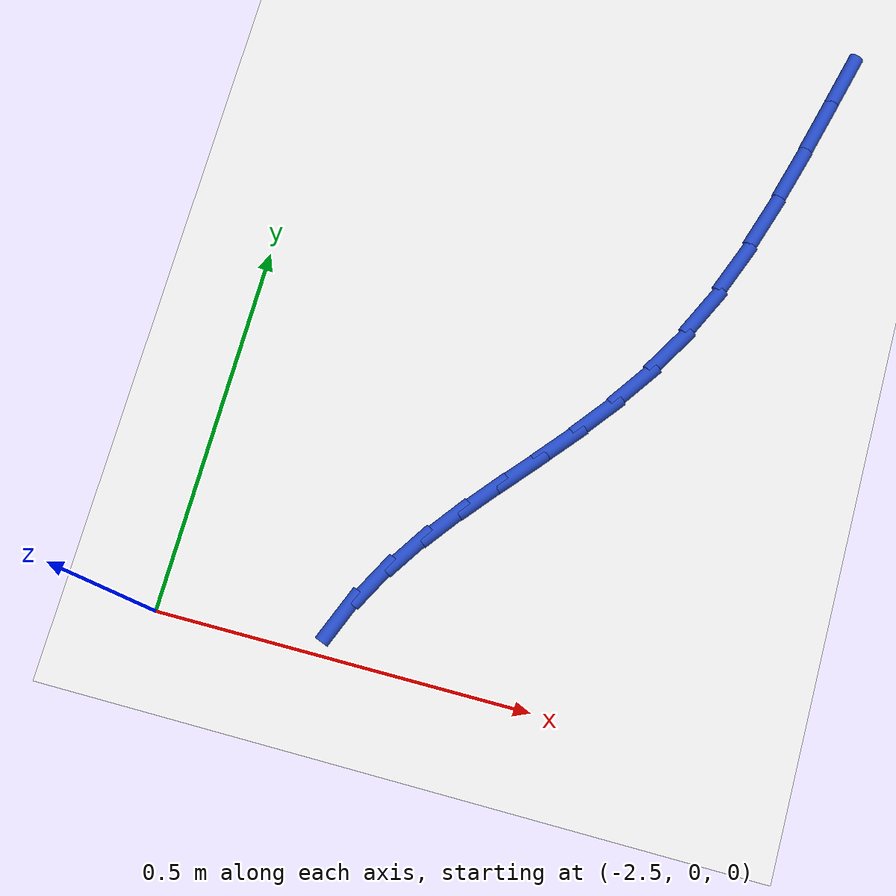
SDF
<sdf version="1.6">
 <world name="default">
  <model name="ground_plane">
   <static>1</static>
   <link name="link">
    <collision name="collision">
     <geometry><plane><normal>0 0 1</normal><size>100 100</size></plane></geometry>
     <surface><friction><ode><mu>100</mu><mu2>50</mu2></ode></friction></surface>
    </collision>
    <visual name="visual">
     <cast_shadows>0</cast_shadows>
     <geometry><plane><normal>0 0 1</normal><size>100 100</size></plane></geometry>
     <material>
      <script><uri>file://media/materials/scripts/gazebo.material</uri><name>Gazebo/WhiteGlow</name></script>
     </material>
    </visual>
   </link>
  </model>
  <model name="line">
   <link name="link_45">
    <pose>-1.802566544623577 0.9450405259076287 0.01 0 1.57 1.3261141362453481</pose>
    <collision name="collision">
     <geometry><cylinder><radius>0.01</radius><length>0.08</length></cylinder></geometry>
    </collision>
    <visual name="visual">
     <material>
      <script><name>Gazebo/Blue</name><uri>file://media/materials/scripts/gazebo.material</uri></script>
     </material>
     <geometry><cylinder><radius>0.01</radius><length>0.08</length></cylinder></geometry>
    </visual>
   </link>
   <link name="link_46">
    <pose>-1.8214650734950804 0.8693510481050201 0.01 0 1.57 1.3207645914791746</pose>
    <collision name="collision">
     <geometry><cylinder><radius>0.01</radius><length>0.08</length></cylinder></geometry>
    </collision>
    <visual name="visual">
     <material>
      <script><name>Gazebo/Blue</name><uri>file://media/materials/scripts/gazebo.material</uri></script>
     </material>
     <geometry><cylinder><radius>0.01</radius><length>0.08</length></cylinder></geometry>
    </visual>
   </link>
   <link name="link_47">
    <pose>-1.8412034610106558 0.7920594909567089 0.01 0 1.57 1.3003375386986522</pose>
    <collision name="collision">
     <geometry><cylinder><radius>0.01</radius><length>0.08</length></cylinder></geometry>
    </collision>
    <visual name="visual">
     <material>
      <script><name>Gazebo/Blue</name><uri>file://media/materials/scripts/gazebo.material</uri></script>
     </material>
     <geometry><cylinder><radius>0.01</radius><length>0.08</length></cylinder></geometry>
    </visual>
   </link>
   <link name="link_48">
    <pose>-1.862538339081742 0.7151083120671432 0.01 0 1.57 1.2635963919422426</pose>
    <collision name="collision">
     <geometry><cylinder><radius>0.01</radius><length>0.08</length></cylinder></geometry>
    </collision>
    <visual name="visual">
     <material>
      <script><name>Gazebo/Blue</name><uri>file://media/materials/scripts/gazebo.material</uri></script>
     </material>
     <geometry><cylinder><radius>0.01</radius><length>0.08</length></cylinder></geometry>
    </visual>
   </link>
   <link name="link_49">
    <pose>-1.886226339619776 0.6404399690407702 0.01 0 1.57 1.2072847196817698</pose>
    <collision name="collision">
     <geometry><cylinder><radius>0.01</radius><length>0.08</length></cylinder></geometry>
    </collision>
    <visual name="visual">
     <material>
      <script><name>Gazebo/Blue</name><uri>file://media/materials/scripts/gazebo.material</uri></script>
     </material>
     <geometry><cylinder><radius>0.01</radius><length>0.08</length></cylinder></geometry>
    </visual>
   </link>
   <link name="link_50">
    <pose>-1.913024094536197 0.5699969194820358 0.01 0 1.57 1.126933720096581</pose>
    <collision name="collision">
     <geometry><cylinder><radius>0.01</radius><length>0.08</length></cylinder></geometry>
    </collision>
    <visual name="visual">
     <material>
      <script><name>Gazebo/Blue</name><uri>file://media/materials/scripts/gazebo.material</uri></script>
     </material>
     <geometry><cylinder><radius>0.01</radius><length>0.08</length></cylinder></geometry>
    </visual>
   </link>
   <link name="link_51">
    <pose>-1.9436349383319347 0.5056218635469029 0.01 0 1.57 1.0387562048359638</pose>
    <collision name="collision">
     <geometry><cylinder><radius>0.01</radius><length>0.08</length></cylinder></geometry>
    </collision>
    <visual name="visual">
     <material>
      <script><name>Gazebo/Blue</name><uri>file://media/materials/scripts/gazebo.material</uri></script>
     </material>
     <geometry><cylinder><radius>0.01</radius><length>0.08</length></cylinder></geometry>
    </visual>
   </link>
   <link name="link_52">
    <pose>-1.9778634960165091 0.4474753752816122 0.01 0 1.57 0.963947373646871</pose>
    <collision name="collision">
     <geometry><cylinder><radius>0.01</radius><length>0.08</length></cylinder></geometry>
    </collision>
    <visual name="visual">
     <material>
      <script><name>Gazebo/Blue</name><uri>file://media/materials/scripts/gazebo.material</uri></script>
     </material>
     <geometry><cylinder><radius>0.01</radius><length>0.08</length></cylinder></geometry>
    </visual>
   </link>
   <link name="link_53">
    <pose>-2.014766839529747 0.3943188240406292 0.01 0 1.57 0.9078275798047265</pose>
    <collision name="collision">
     <geometry><cylinder><radius>0.01</radius><length>0.08</length></cylinder></geometry>
    </collision>
    <visual name="visual">
     <material>
      <script><name>Gazebo/Blue</name><uri>file://media/materials/scripts/gazebo.material</uri></script>
     </material>
     <geometry><cylinder><radius>0.01</radius><length>0.08</length></cylinder></geometry>
    </visual>
   </link>
   <link name="link_54">
    <pose>-2.0533792964351183 0.34487100823676814 0.01 0 1.57 0.8738989918392065</pose>
    <collision name="collision">
     <geometry><cylinder><radius>0.01</radius><length>0.08</length></cylinder></geometry>
    </collision>
    <visual name="visual">
     <material>
      <script><name>Gazebo/Blue</name><uri>file://media/materials/scripts/gazebo.material</uri></script>
     </material>
     <geometry><cylinder><radius>0.01</radius><length>0.08</length></cylinder></geometry>
    </visual>
   </link>
   <link name="link_55">
    <pose>-2.0927351942960923 0.2978507262828452 0.01 0 1.57 0.8645229685855741</pose>
    <collision name="collision">
     <geometry><cylinder><radius>0.01</radius><length>0.08</length></cylinder></geometry>
    </collision>
    <visual name="visual">
     <material>
      <script><name>Gazebo/Blue</name><uri>file://media/materials/scripts/gazebo.material</uri></script>
     </material>
     <geometry><cylinder><radius>0.01</radius><length>0.08</length></cylinder></geometry>
    </visual>
   </link>
   <link name="link_56">
    <pose>-2.1318688606761405 0.2519767765916753 0.01 0 1.57 0.8811451970613616</pose>
    <collision name="collision">
     <geometry><cylinder><radius>0.01</radius><length>0.08</length></cylinder></geometry>
    </collision>
    <visual name="visual">
     <material>
      <script><name>Gazebo/Blue</name><uri>file://media/materials/scripts/gazebo.material</uri></script>
     </material>
     <geometry><cylinder><radius>0.01</radius><length>0.08</length></cylinder></geometry>
    </visual>
   </link>
   <link name="link_57">
    <pose>-2.1698146231387327 0.20596795757607422 0.01 0 1.57 0.9242856460463893</pose>
    <collision name="collision">
     <geometry><cylinder><radius>0.01</radius><length>0.08</length></cylinder></geometry>
    </collision>
    <visual name="visual">
     <material>
      <script><name>Gazebo/Blue</name><uri>file://media/materials/scripts/gazebo.material</uri></script>
     </material>
     <geometry><cylinder><radius>0.01</radius><length>0.08</length></cylinder></geometry>
    </visual>
   </link>
   <link name="link_58">
    <pose>-2.205606809247339 0.15854306764885695 0.01 0 1.57 0.9931103964360857</pose>
    <collision name="collision">
     <geometry><cylinder><radius>0.01</radius><length>0.08</length></cylinder></geometry>
    </collision>
    <visual name="visual">
     <material>
      <script><name>Gazebo/Blue</name><uri>file://media/materials/scripts/gazebo.material</uri></script>
     </material>
     <geometry><cylinder><radius>0.01</radius><length>0.08</length></cylinder></geometry>
    </visual>
   </link>
   <link name="link_59">
    <pose>-2.23827974656543 0.10842090522283945 0.01 0 1.57 1.0846697819741433</pose>
    <collision name="collision">
     <geometry><cylinder><radius>0.01</radius><length>0.08</length></cylinder></geometry>
    </collision>
    <visual name="visual">
     <material>
      <script><name>Gazebo/Blue</name><uri>file://media/materials/scripts/gazebo.material</uri></script>
     </material>
     <geometry><cylinder><radius>0.01</radius><length>0.08</length></cylinder></geometry>
    </visual>
   </link>
   <link name="link_60">
    <pose>-2.2668677626564753 0.05432026871083653 0.01 0 1.57 1.1932506562891696</pose>
    <collision name="collision">
     <geometry><cylinder><radius>0.01</radius><length>0.08</length></cylinder></geometry>
    </collision>
    <visual name="visual">
     <material>
      <script><name>Gazebo/Blue</name><uri>file://media/materials/scripts/gazebo.material</uri></script>
     </material>
     <geometry><cylinder><radius>0.01</radius><length>0.08</length></cylinder></geometry>
    </visual>
   </link>
  </model>
 </world>
</sdf>
